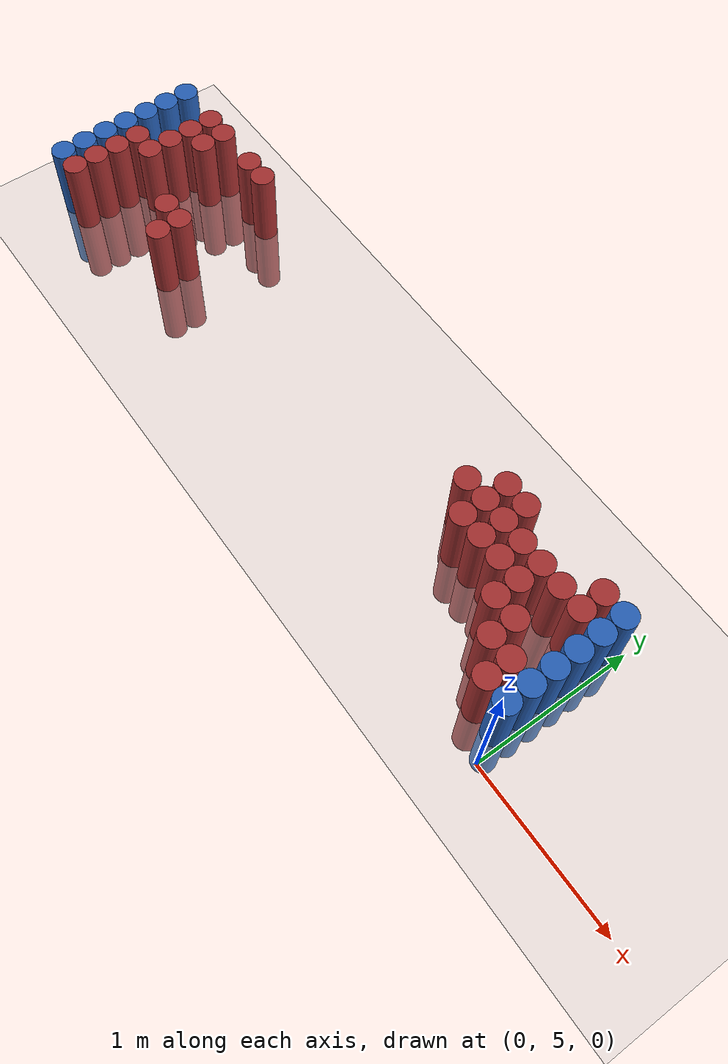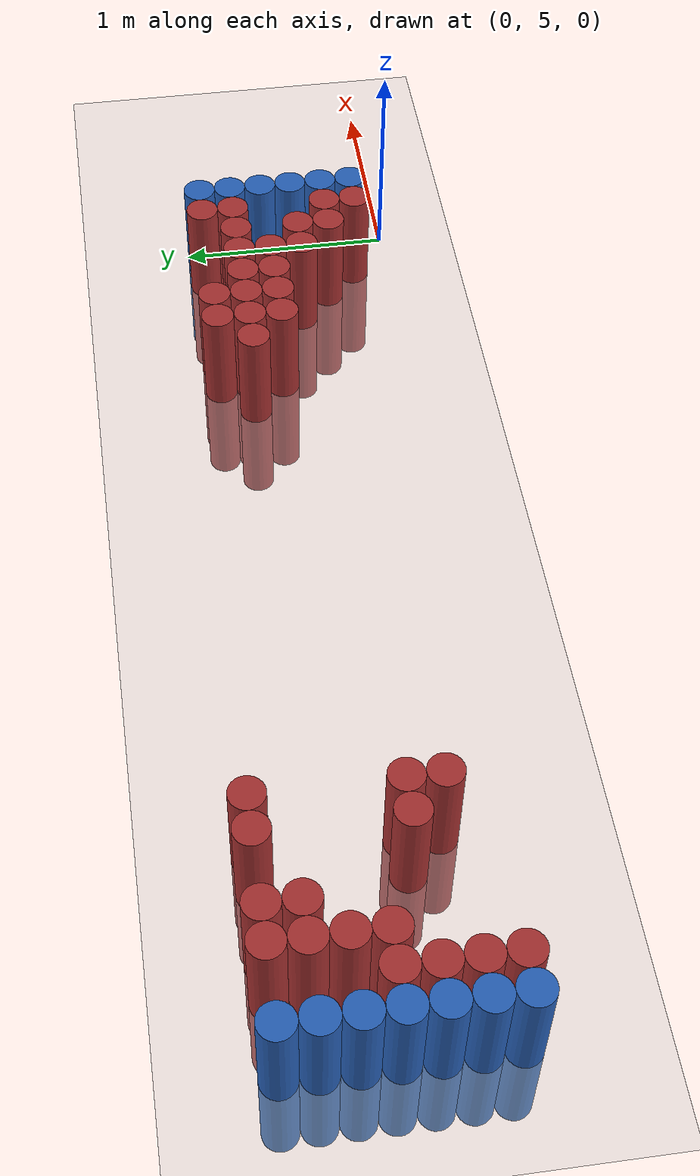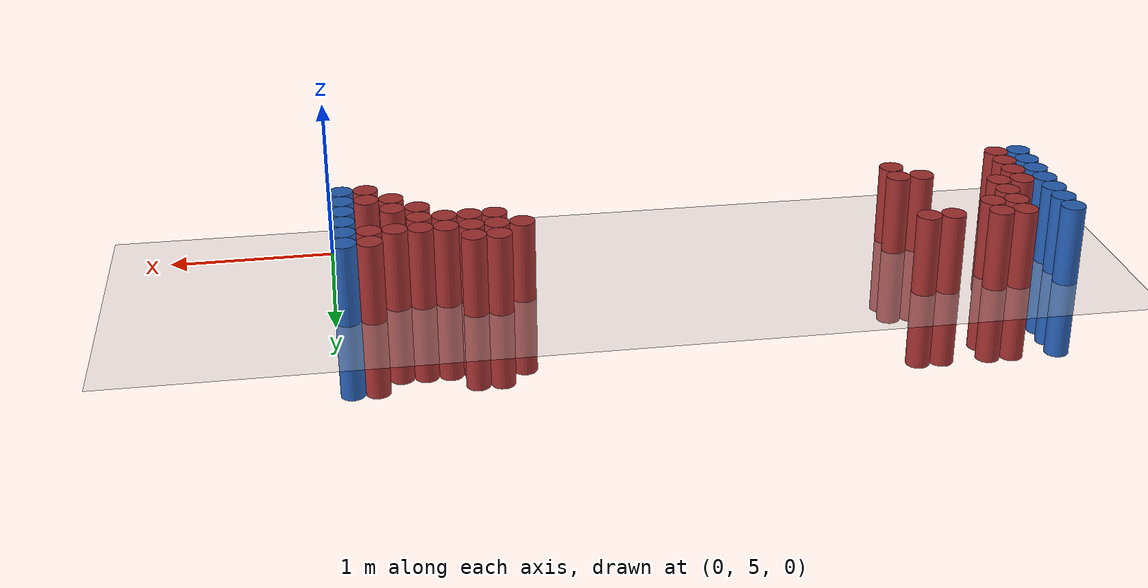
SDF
<sdf version="1.6">
 <world name="default">
  <model name="ground_plane">
   <static>1</static>
   <link name="link">
    <collision name="collision">
     <geometry><plane><normal>0 0 1</normal><size>100 100</size></plane></geometry>
     <surface><friction><ode><mu>100</mu><mu2>50</mu2></ode></friction></surface>
    </collision>
    <visual name="visual">
     <cast_shadows>0</cast_shadows>
     <geometry><plane><normal>0 0 1</normal><size>100 100</size></plane></geometry>
     <material>
      <script><uri>file://media/materials/scripts/gazebo.material</uri><name>Gazebo/Grey</name></script>
     </material>
    </visual>
   </link>
  </model>
  <model name="unit_cylinder_96">
   <static>1</static>
   <pose>-4.425000 5.175000 0.000000 0.000000 0.000000 0.000000</pose>
   <link name="link">
    <inertial>
     <mass>1</mass>
     <inertia><ixx>0.145833</ixx><ixy>0</ixy><ixz>0</ixz><iyy>0.145833</iyy><iyz>0</iyz><izz>0.125</izz></inertia>
    </inertial>
    <collision name="collision">
     <geometry><cylinder><radius>0.075000</radius><length>1</length></cylinder></geometry>
    </collision>
    <visual name="visual">
     <geometry><cylinder><radius>0.075000</radius><length>1</length></cylinder></geometry>
     <material>
      <ambient>0.152000 0.379000 0.720000 1</ambient>
      <diffuse>0.152000 0.379000 0.720000 1</diffuse>
     </material>
     <material>
      <script><name>Gazebo/Grey</name><uri>file://media/materials/scripts/gazebo.material</uri></script>
     </material>
    </visual>
   </link>
  </model>
  <model name="unit_cylinder_97">
   <static>1</static>
   <pose>-4.425000 5.325000 0.000000 0.000000 0.000000 0.000000</pose>
   <link name="link">
    <inertial>
     <mass>1</mass>
     <inertia><ixx>0.145833</ixx><ixy>0</ixy><ixz>0</ixz><iyy>0.145833</iyy><iyz>0</iyz><izz>0.125</izz></inertia>
    </inertial>
    <collision name="collision">
     <geometry><cylinder><radius>0.075000</radius><length>1</length></cylinder></geometry>
    </collision>
    <visual name="visual">
     <geometry><cylinder><radius>0.075000</radius><length>1</length></cylinder></geometry>
     <material>
      <ambient>0.152000 0.379000 0.720000 1</ambient>
      <diffuse>0.152000 0.379000 0.720000 1</diffuse>
     </material>
     <material>
      <script><name>Gazebo/Grey</name><uri>file://media/materials/scripts/gazebo.material</uri></script>
     </material>
    </visual>
   </link>
  </model>
  <model name="unit_cylinder_98">
   <static>1</static>
   <pose>-4.425000 5.475000 0.000000 0.000000 0.000000 0.000000</pose>
   <link name="link">
    <inertial>
     <mass>1</mass>
     <inertia><ixx>0.145833</ixx><ixy>0</ixy><ixz>0</ixz><iyy>0.145833</iyy><iyz>0</iyz><izz>0.125</izz></inertia>
    </inertial>
    <collision name="collision">
     <geometry><cylinder><radius>0.075000</radius><length>1</length></cylinder></geometry>
    </collision>
    <visual name="visual">
     <geometry><cylinder><radius>0.075000</radius><length>1</length></cylinder></geometry>
     <material>
      <ambient>0.152000 0.379000 0.720000 1</ambient>
      <diffuse>0.152000 0.379000 0.720000 1</diffuse>
     </material>
     <material>
      <script><name>Gazebo/Grey</name><uri>file://media/materials/scripts/gazebo.material</uri></script>
     </material>
    </visual>
   </link>
  </model>
  <model name="unit_cylinder_99">
   <static>1</static>
   <pose>-4.425000 5.625000 0.000000 0.000000 0.000000 0.000000</pose>
   <link name="link">
    <inertial>
     <mass>1</mass>
     <inertia><ixx>0.145833</ixx><ixy>0</ixy><ixz>0</ixz><iyy>0.145833</iyy><iyz>0</iyz><izz>0.125</izz></inertia>
    </inertial>
    <collision name="collision">
     <geometry><cylinder><radius>0.075000</radius><length>1</length></cylinder></geometry>
    </collision>
    <visual name="visual">
     <geometry><cylinder><radius>0.075000</radius><length>1</length></cylinder></geometry>
     <material>
      <ambient>0.152000 0.379000 0.720000 1</ambient>
      <diffuse>0.152000 0.379000 0.720000 1</diffuse>
     </material>
     <material>
      <script><name>Gazebo/Grey</name><uri>file://media/materials/scripts/gazebo.material</uri></script>
     </material>
    </visual>
   </link>
  </model>
  <model name="unit_cylinder_100">
   <static>1</static>
   <pose>-4.425000 5.775000 0.000000 0.000000 0.000000 0.000000</pose>
   <link name="link">
    <inertial>
     <mass>1</mass>
     <inertia><ixx>0.145833</ixx><ixy>0</ixy><ixz>0</ixz><iyy>0.145833</iyy><iyz>0</iyz><izz>0.125</izz></inertia>
    </inertial>
    <collision name="collision">
     <geometry><cylinder><radius>0.075000</radius><length>1</length></cylinder></geometry>
    </collision>
    <visual name="visual">
     <geometry><cylinder><radius>0.075000</radius><length>1</length></cylinder></geometry>
     <material>
      <ambient>0.152000 0.379000 0.720000 1</ambient>
      <diffuse>0.152000 0.379000 0.720000 1</diffuse>
     </material>
     <material>
      <script><name>Gazebo/Grey</name><uri>file://media/materials/scripts/gazebo.material</uri></script>
     </material>
    </visual>
   </link>
  </model>
  <model name="unit_cylinder_101">
   <static>1</static>
   <pose>-4.425000 5.925000 0.000000 0.000000 0.000000 0.000000</pose>
   <link name="link">
    <inertial>
     <mass>1</mass>
     <inertia><ixx>0.145833</ixx><ixy>0</ixy><ixz>0</ixz><iyy>0.145833</iyy><iyz>0</iyz><izz>0.125</izz></inertia>
    </inertial>
    <collision name="collision">
     <geometry><cylinder><radius>0.075000</radius><length>1</length></cylinder></geometry>
    </collision>
    <visual name="visual">
     <geometry><cylinder><radius>0.075000</radius><length>1</length></cylinder></geometry>
     <material>
      <ambient>0.152000 0.379000 0.720000 1</ambient>
      <diffuse>0.152000 0.379000 0.720000 1</diffuse>
     </material>
     <material>
      <script><name>Gazebo/Grey</name><uri>file://media/materials/scripts/gazebo.material</uri></script>
     </material>
    </visual>
   </link>
  </model>
  <model name="unit_cylinder_102">
   <static>1</static>
   <pose>-4.425000 6.075000 0.000000 0.000000 0.000000 0.000000</pose>
   <link name="link">
    <inertial>
     <mass>1</mass>
     <inertia><ixx>0.145833</ixx><ixy>0</ixy><ixz>0</ixz><iyy>0.145833</iyy><iyz>0</iyz><izz>0.125</izz></inertia>
    </inertial>
    <collision name="collision">
     <geometry><cylinder><radius>0.075000</radius><length>1</length></cylinder></geometry>
    </collision>
    <visual name="visual">
     <geometry><cylinder><radius>0.075000</radius><length>1</length></cylinder></geometry>
     <material>
      <ambient>0.152000 0.379000 0.720000 1</ambient>
      <diffuse>0.152000 0.379000 0.720000 1</diffuse>
     </material>
     <material>
      <script><name>Gazebo/Grey</name><uri>file://media/materials/scripts/gazebo.material</uri></script>
     </material>
    </visual>
   </link>
  </model>
  <model name="unit_cylinder_126">
   <static>1</static>
   <pose>-4.275000 5.175000 0.000000 0.000000 0.000000 0.000000</pose>
   <link name="link">
    <inertial>
     <mass>1</mass>
     <inertia><ixx>0.145833</ixx><ixy>0</ixy><ixz>0</ixz><iyy>0.145833</iyy><iyz>0</iyz><izz>0.125</izz></inertia>
    </inertial>
    <collision name="collision">
     <geometry><cylinder><radius>0.075000</radius><length>1</length></cylinder></geometry>
    </collision>
    <visual name="visual">
     <geometry><cylinder><radius>0.075000</radius><length>1</length></cylinder></geometry>
     <material>
      <ambient>0.648000 0.192000 0.192000 1</ambient>
      <diffuse>0.648000 0.192000 0.192000 1</diffuse>
     </material>
     <material>
      <script><name>Gazebo/Grey</name><uri>file://media/materials/scripts/gazebo.material</uri></script>
     </material>
    </visual>
   </link>
  </model>
  <model name="unit_cylinder_127">
   <static>1</static>
   <pose>-4.275000 5.325000 0.000000 0.000000 0.000000 0.000000</pose>
   <link name="link">
    <inertial>
     <mass>1</mass>
     <inertia><ixx>0.145833</ixx><ixy>0</ixy><ixz>0</ixz><iyy>0.145833</iyy><iyz>0</iyz><izz>0.125</izz></inertia>
    </inertial>
    <collision name="collision">
     <geometry><cylinder><radius>0.075000</radius><length>1</length></cylinder></geometry>
    </collision>
    <visual name="visual">
     <geometry><cylinder><radius>0.075000</radius><length>1</length></cylinder></geometry>
     <material>
      <ambient>0.648000 0.192000 0.192000 1</ambient>
      <diffuse>0.648000 0.192000 0.192000 1</diffuse>
     </material>
     <material>
      <script><name>Gazebo/Grey</name><uri>file://media/materials/scripts/gazebo.material</uri></script>
     </material>
    </visual>
   </link>
  </model>
  <model name="unit_cylinder_128">
   <static>1</static>
   <pose>-4.275000 5.475000 0.000000 0.000000 0.000000 0.000000</pose>
   <link name="link">
    <inertial>
     <mass>1</mass>
     <inertia><ixx>0.145833</ixx><ixy>0</ixy><ixz>0</ixz><iyy>0.145833</iyy><iyz>0</iyz><izz>0.125</izz></inertia>
    </inertial>
    <collision name="collision">
     <geometry><cylinder><radius>0.075000</radius><length>1</length></cylinder></geometry>
    </collision>
    <visual name="visual">
     <geometry><cylinder><radius>0.075000</radius><length>1</length></cylinder></geometry>
     <material>
      <ambient>0.648000 0.192000 0.192000 1</ambient>
      <diffuse>0.648000 0.192000 0.192000 1</diffuse>
     </material>
     <material>
      <script><name>Gazebo/Grey</name><uri>file://media/materials/scripts/gazebo.material</uri></script>
     </material>
    </visual>
   </link>
  </model>
  <model name="unit_cylinder_129">
   <static>1</static>
   <pose>-4.275000 5.625000 0.000000 0.000000 0.000000 0.000000</pose>
   <link name="link">
    <inertial>
     <mass>1</mass>
     <inertia><ixx>0.145833</ixx><ixy>0</ixy><ixz>0</ixz><iyy>0.145833</iyy><iyz>0</iyz><izz>0.125</izz></inertia>
    </inertial>
    <collision name="collision">
     <geometry><cylinder><radius>0.075000</radius><length>1</length></cylinder></geometry>
    </collision>
    <visual name="visual">
     <geometry><cylinder><radius>0.075000</radius><length>1</length></cylinder></geometry>
     <material>
      <ambient>0.648000 0.192000 0.192000 1</ambient>
      <diffuse>0.648000 0.192000 0.192000 1</diffuse>
     </material>
     <material>
      <script><name>Gazebo/Grey</name><uri>file://media/materials/scripts/gazebo.material</uri></script>
     </material>
    </visual>
   </link>
  </model>
  <model name="unit_cylinder_139">
   <static>1</static>
   <pose>-4.125000 5.625000 0.000000 0.000000 0.000000 0.000000</pose>
   <link name="link">
    <inertial>
     <mass>1</mass>
     <inertia><ixx>0.145833</ixx><ixy>0</ixy><ixz>0</ixz><iyy>0.145833</iyy><iyz>0</iyz><izz>0.125</izz></inertia>
    </inertial>
    <collision name="collision">
     <geometry><cylinder><radius>0.075000</radius><length>1</length></cylinder></geometry>
    </collision>
    <visual name="visual">
     <geometry><cylinder><radius>0.075000</radius><length>1</length></cylinder></geometry>
     <material>
      <ambient>0.648000 0.192000 0.192000 1</ambient>
      <diffuse>0.648000 0.192000 0.192000 1</diffuse>
     </material>
     <material>
      <script><name>Gazebo/Grey</name><uri>file://media/materials/scripts/gazebo.material</uri></script>
     </material>
    </visual>
   </link>
  </model>
  <model name="unit_cylinder_140">
   <static>1</static>
   <pose>-4.125000 5.775000 0.000000 0.000000 0.000000 0.000000</pose>
   <link name="link">
    <inertial>
     <mass>1</mass>
     <inertia><ixx>0.145833</ixx><ixy>0</ixy><ixz>0</ixz><iyy>0.145833</iyy><iyz>0</iyz><izz>0.125</izz></inertia>
    </inertial>
    <collision name="collision">
     <geometry><cylinder><radius>0.075000</radius><length>1</length></cylinder></geometry>
    </collision>
    <visual name="visual">
     <geometry><cylinder><radius>0.075000</radius><length>1</length></cylinder></geometry>
     <material>
      <ambient>0.648000 0.192000 0.192000 1</ambient>
      <diffuse>0.648000 0.192000 0.192000 1</diffuse>
     </material>
     <material>
      <script><name>Gazebo/Grey</name><uri>file://media/materials/scripts/gazebo.material</uri></script>
     </material>
    </visual>
   </link>
  </model>
  <model name="unit_cylinder_141">
   <static>1</static>
   <pose>-4.125000 5.925000 0.000000 0.000000 0.000000 0.000000</pose>
   <link name="link">
    <inertial>
     <mass>1</mass>
     <inertia><ixx>0.145833</ixx><ixy>0</ixy><ixz>0</ixz><iyy>0.145833</iyy><iyz>0</iyz><izz>0.125</izz></inertia>
    </inertial>
    <collision name="collision">
     <geometry><cylinder><radius>0.075000</radius><length>1</length></cylinder></geometry>
    </collision>
    <visual name="visual">
     <geometry><cylinder><radius>0.075000</radius><length>1</length></cylinder></geometry>
     <material>
      <ambient>0.648000 0.192000 0.192000 1</ambient>
      <diffuse>0.648000 0.192000 0.192000 1</diffuse>
     </material>
     <material>
      <script><name>Gazebo/Grey</name><uri>file://media/materials/scripts/gazebo.material</uri></script>
     </material>
    </visual>
   </link>
  </model>
  <model name="unit_cylinder_142">
   <static>1</static>
   <pose>-4.125000 6.075000 0.000000 0.000000 0.000000 0.000000</pose>
   <link name="link">
    <inertial>
     <mass>1</mass>
     <inertia><ixx>0.145833</ixx><ixy>0</ixy><ixz>0</ixz><iyy>0.145833</iyy><iyz>0</iyz><izz>0.125</izz></inertia>
    </inertial>
    <collision name="collision">
     <geometry><cylinder><radius>0.075000</radius><length>1</length></cylinder></geometry>
    </collision>
    <visual name="visual">
     <geometry><cylinder><radius>0.075000</radius><length>1</length></cylinder></geometry>
     <material>
      <ambient>0.648000 0.192000 0.192000 1</ambient>
      <diffuse>0.648000 0.192000 0.192000 1</diffuse>
     </material>
     <material>
      <script><name>Gazebo/Grey</name><uri>file://media/materials/scripts/gazebo.material</uri></script>
     </material>
    </visual>
   </link>
  </model>
  <model name="unit_cylinder_150">
   <static>1</static>
   <pose>-3.975000 5.925000 0.000000 0.000000 0.000000 0.000000</pose>
   <link name="link">
    <inertial>
     <mass>1</mass>
     <inertia><ixx>0.145833</ixx><ixy>0</ixy><ixz>0</ixz><iyy>0.145833</iyy><iyz>0</iyz><izz>0.125</izz></inertia>
    </inertial>
    <collision name="collision">
     <geometry><cylinder><radius>0.075000</radius><length>1</length></cylinder></geometry>
    </collision>
    <visual name="visual">
     <geometry><cylinder><radius>0.075000</radius><length>1</length></cylinder></geometry>
     <material>
      <ambient>0.648000 0.192000 0.192000 1</ambient>
      <diffuse>0.648000 0.192000 0.192000 1</diffuse>
     </material>
     <material>
      <script><name>Gazebo/Grey</name><uri>file://media/materials/scripts/gazebo.material</uri></script>
     </material>
    </visual>
   </link>
  </model>
  <model name="unit_cylinder_151">
   <static>1</static>
   <pose>-3.975000 6.075000 0.000000 0.000000 0.000000 0.000000</pose>
   <link name="link">
    <inertial>
     <mass>1</mass>
     <inertia><ixx>0.145833</ixx><ixy>0</ixy><ixz>0</ixz><iyy>0.145833</iyy><iyz>0</iyz><izz>0.125</izz></inertia>
    </inertial>
    <collision name="collision">
     <geometry><cylinder><radius>0.075000</radius><length>1</length></cylinder></geometry>
    </collision>
    <visual name="visual">
     <geometry><cylinder><radius>0.075000</radius><length>1</length></cylinder></geometry>
     <material>
      <ambient>0.648000 0.192000 0.192000 1</ambient>
      <diffuse>0.648000 0.192000 0.192000 1</diffuse>
     </material>
     <material>
      <script><name>Gazebo/Grey</name><uri>file://media/materials/scripts/gazebo.material</uri></script>
     </material>
    </visual>
   </link>
  </model>
  <model name="unit_cylinder_163">
   <static>1</static>
   <pose>-3.675000 5.475000 0.000000 0.000000 0.000000 0.000000</pose>
   <link name="link">
    <inertial>
     <mass>1</mass>
     <inertia><ixx>0.145833</ixx><ixy>0</ixy><ixz>0</ixz><iyy>0.145833</iyy><iyz>0</iyz><izz>0.125</izz></inertia>
    </inertial>
    <collision name="collision">
     <geometry><cylinder><radius>0.075000</radius><length>1</length></cylinder></geometry>
    </collision>
    <visual name="visual">
     <geometry><cylinder><radius>0.075000</radius><length>1</length></cylinder></geometry>
     <material>
      <ambient>0.648000 0.192000 0.192000 1</ambient>
      <diffuse>0.648000 0.192000 0.192000 1</diffuse>
     </material>
     <material>
      <script><name>Gazebo/Grey</name><uri>file://media/materials/scripts/gazebo.material</uri></script>
     </material>
    </visual>
   </link>
  </model>
  <model name="unit_cylinder_164">
   <static>1</static>
   <pose>-3.675000 6.075000 0.000000 0.000000 0.000000 0.000000</pose>
   <link name="link">
    <inertial>
     <mass>1</mass>
     <inertia><ixx>0.145833</ixx><ixy>0</ixy><ixz>0</ixz><iyy>0.145833</iyy><iyz>0</iyz><izz>0.125</izz></inertia>
    </inertial>
    <collision name="collision">
     <geometry><cylinder><radius>0.075000</radius><length>1</length></cylinder></geometry>
    </collision>
    <visual name="visual">
     <geometry><cylinder><radius>0.075000</radius><length>1</length></cylinder></geometry>
     <material>
      <ambient>0.648000 0.192000 0.192000 1</ambient>
      <diffuse>0.648000 0.192000 0.192000 1</diffuse>
     </material>
     <material>
      <script><name>Gazebo/Grey</name><uri>file://media/materials/scripts/gazebo.material</uri></script>
     </material>
    </visual>
   </link>
  </model>
  <model name="unit_cylinder_176">
   <static>1</static>
   <pose>-3.525000 5.325000 0.000000 0.000000 0.000000 0.000000</pose>
   <link name="link">
    <inertial>
     <mass>1</mass>
     <inertia><ixx>0.145833</ixx><ixy>0</ixy><ixz>0</ixz><iyy>0.145833</iyy><iyz>0</iyz><izz>0.125</izz></inertia>
    </inertial>
    <collision name="collision">
     <geometry><cylinder><radius>0.075000</radius><length>1</length></cylinder></geometry>
    </collision>
    <visual name="visual">
     <geometry><cylinder><radius>0.075000</radius><length>1</length></cylinder></geometry>
     <material>
      <ambient>0.648000 0.192000 0.192000 1</ambient>
      <diffuse>0.648000 0.192000 0.192000 1</diffuse>
     </material>
     <material>
      <script><name>Gazebo/Grey</name><uri>file://media/materials/scripts/gazebo.material</uri></script>
     </material>
    </visual>
   </link>
  </model>
  <model name="unit_cylinder_177">
   <static>1</static>
   <pose>-3.525000 5.475000 0.000000 0.000000 0.000000 0.000000</pose>
   <link name="link">
    <inertial>
     <mass>1</mass>
     <inertia><ixx>0.145833</ixx><ixy>0</ixy><ixz>0</ixz><iyy>0.145833</iyy><iyz>0</iyz><izz>0.125</izz></inertia>
    </inertial>
    <collision name="collision">
     <geometry><cylinder><radius>0.075000</radius><length>1</length></cylinder></geometry>
    </collision>
    <visual name="visual">
     <geometry><cylinder><radius>0.075000</radius><length>1</length></cylinder></geometry>
     <material>
      <ambient>0.648000 0.192000 0.192000 1</ambient>
      <diffuse>0.648000 0.192000 0.192000 1</diffuse>
     </material>
     <material>
      <script><name>Gazebo/Grey</name><uri>file://media/materials/scripts/gazebo.material</uri></script>
     </material>
    </visual>
   </link>
  </model>
  <model name="unit_cylinder_178">
   <static>1</static>
   <pose>-3.525000 6.075000 0.000000 0.000000 0.000000 0.000000</pose>
   <link name="link">
    <inertial>
     <mass>1</mass>
     <inertia><ixx>0.145833</ixx><ixy>0</ixy><ixz>0</ixz><iyy>0.145833</iyy><iyz>0</iyz><izz>0.125</izz></inertia>
    </inertial>
    <collision name="collision">
     <geometry><cylinder><radius>0.075000</radius><length>1</length></cylinder></geometry>
    </collision>
    <visual name="visual">
     <geometry><cylinder><radius>0.075000</radius><length>1</length></cylinder></geometry>
     <material>
      <ambient>0.648000 0.192000 0.192000 1</ambient>
      <diffuse>0.648000 0.192000 0.192000 1</diffuse>
     </material>
     <material>
      <script><name>Gazebo/Grey</name><uri>file://media/materials/scripts/gazebo.material</uri></script>
     </material>
    </visual>
   </link>
  </model>
  <model name="unit_cylinder_253">
   <static>1</static>
   <pose>-1.125000 5.775000 0.000000 0.000000 0.000000 0.000000</pose>
   <link name="link">
    <inertial>
     <mass>1</mass>
     <inertia><ixx>0.145833</ixx><ixy>0</ixy><ixz>0</ixz><iyy>0.145833</iyy><iyz>0</iyz><izz>0.125</izz></inertia>
    </inertial>
    <collision name="collision">
     <geometry><cylinder><radius>0.075000</radius><length>1</length></cylinder></geometry>
    </collision>
    <visual name="visual">
     <geometry><cylinder><radius>0.075000</radius><length>1</length></cylinder></geometry>
     <material>
      <ambient>0.648000 0.192000 0.192000 1</ambient>
      <diffuse>0.648000 0.192000 0.192000 1</diffuse>
     </material>
     <material>
      <script><name>Gazebo/Grey</name><uri>file://media/materials/scripts/gazebo.material</uri></script>
     </material>
    </visual>
   </link>
  </model>
  <model name="unit_cylinder_259">
   <static>1</static>
   <pose>-0.975000 5.625000 0.000000 0.000000 0.000000 0.000000</pose>
   <link name="link">
    <inertial>
     <mass>1</mass>
     <inertia><ixx>0.145833</ixx><ixy>0</ixy><ixz>0</ixz><iyy>0.145833</iyy><iyz>0</iyz><izz>0.125</izz></inertia>
    </inertial>
    <collision name="collision">
     <geometry><cylinder><radius>0.075000</radius><length>1</length></cylinder></geometry>
    </collision>
    <visual name="visual">
     <geometry><cylinder><radius>0.075000</radius><length>1</length></cylinder></geometry>
     <material>
      <ambient>0.648000 0.192000 0.192000 1</ambient>
      <diffuse>0.648000 0.192000 0.192000 1</diffuse>
     </material>
     <material>
      <script><name>Gazebo/Grey</name><uri>file://media/materials/scripts/gazebo.material</uri></script>
     </material>
    </visual>
   </link>
  </model>
  <model name="unit_cylinder_260">
   <static>1</static>
   <pose>-0.975000 5.775000 0.000000 0.000000 0.000000 0.000000</pose>
   <link name="link">
    <inertial>
     <mass>1</mass>
     <inertia><ixx>0.145833</ixx><ixy>0</ixy><ixz>0</ixz><iyy>0.145833</iyy><iyz>0</iyz><izz>0.125</izz></inertia>
    </inertial>
    <collision name="collision">
     <geometry><cylinder><radius>0.075000</radius><length>1</length></cylinder></geometry>
    </collision>
    <visual name="visual">
     <geometry><cylinder><radius>0.075000</radius><length>1</length></cylinder></geometry>
     <material>
      <ambient>0.648000 0.192000 0.192000 1</ambient>
      <diffuse>0.648000 0.192000 0.192000 1</diffuse>
     </material>
     <material>
      <script><name>Gazebo/Grey</name><uri>file://media/materials/scripts/gazebo.material</uri></script>
     </material>
    </visual>
   </link>
  </model>
  <model name="unit_cylinder_261">
   <static>1</static>
   <pose>-0.975000 5.925000 0.000000 0.000000 0.000000 0.000000</pose>
   <link name="link">
    <inertial>
     <mass>1</mass>
     <inertia><ixx>0.145833</ixx><ixy>0</ixy><ixz>0</ixz><iyy>0.145833</iyy><iyz>0</iyz><izz>0.125</izz></inertia>
    </inertial>
    <collision name="collision">
     <geometry><cylinder><radius>0.075000</radius><length>1</length></cylinder></geometry>
    </collision>
    <visual name="visual">
     <geometry><cylinder><radius>0.075000</radius><length>1</length></cylinder></geometry>
     <material>
      <ambient>0.648000 0.192000 0.192000 1</ambient>
      <diffuse>0.648000 0.192000 0.192000 1</diffuse>
     </material>
     <material>
      <script><name>Gazebo/Grey</name><uri>file://media/materials/scripts/gazebo.material</uri></script>
     </material>
    </visual>
   </link>
  </model>
  <model name="unit_cylinder_269">
   <static>1</static>
   <pose>-0.825000 5.625000 0.000000 0.000000 0.000000 0.000000</pose>
   <link name="link">
    <inertial>
     <mass>1</mass>
     <inertia><ixx>0.145833</ixx><ixy>0</ixy><ixz>0</ixz><iyy>0.145833</iyy><iyz>0</iyz><izz>0.125</izz></inertia>
    </inertial>
    <collision name="collision">
     <geometry><cylinder><radius>0.075000</radius><length>1</length></cylinder></geometry>
    </collision>
    <visual name="visual">
     <geometry><cylinder><radius>0.075000</radius><length>1</length></cylinder></geometry>
     <material>
      <ambient>0.648000 0.192000 0.192000 1</ambient>
      <diffuse>0.648000 0.192000 0.192000 1</diffuse>
     </material>
     <material>
      <script><name>Gazebo/Grey</name><uri>file://media/materials/scripts/gazebo.material</uri></script>
     </material>
    </visual>
   </link>
  </model>
  <model name="unit_cylinder_270">
   <static>1</static>
   <pose>-0.825000 5.775000 0.000000 0.000000 0.000000 0.000000</pose>
   <link name="link">
    <inertial>
     <mass>1</mass>
     <inertia><ixx>0.145833</ixx><ixy>0</ixy><ixz>0</ixz><iyy>0.145833</iyy><iyz>0</iyz><izz>0.125</izz></inertia>
    </inertial>
    <collision name="collision">
     <geometry><cylinder><radius>0.075000</radius><length>1</length></cylinder></geometry>
    </collision>
    <visual name="visual">
     <geometry><cylinder><radius>0.075000</radius><length>1</length></cylinder></geometry>
     <material>
      <ambient>0.648000 0.192000 0.192000 1</ambient>
      <diffuse>0.648000 0.192000 0.192000 1</diffuse>
     </material>
     <material>
      <script><name>Gazebo/Grey</name><uri>file://media/materials/scripts/gazebo.material</uri></script>
     </material>
    </visual>
   </link>
  </model>
  <model name="unit_cylinder_271">
   <static>1</static>
   <pose>-0.825000 5.925000 0.000000 0.000000 0.000000 0.000000</pose>
   <link name="link">
    <inertial>
     <mass>1</mass>
     <inertia><ixx>0.145833</ixx><ixy>0</ixy><ixz>0</ixz><iyy>0.145833</iyy><iyz>0</iyz><izz>0.125</izz></inertia>
    </inertial>
    <collision name="collision">
     <geometry><cylinder><radius>0.075000</radius><length>1</length></cylinder></geometry>
    </collision>
    <visual name="visual">
     <geometry><cylinder><radius>0.075000</radius><length>1</length></cylinder></geometry>
     <material>
      <ambient>0.648000 0.192000 0.192000 1</ambient>
      <diffuse>0.648000 0.192000 0.192000 1</diffuse>
     </material>
     <material>
      <script><name>Gazebo/Grey</name><uri>file://media/materials/scripts/gazebo.material</uri></script>
     </material>
    </visual>
   </link>
  </model>
  <model name="unit_cylinder_274">
   <static>1</static>
   <pose>-0.675000 5.625000 0.000000 0.000000 0.000000 0.000000</pose>
   <link name="link">
    <inertial>
     <mass>1</mass>
     <inertia><ixx>0.145833</ixx><ixy>0</ixy><ixz>0</ixz><iyy>0.145833</iyy><iyz>0</iyz><izz>0.125</izz></inertia>
    </inertial>
    <collision name="collision">
     <geometry><cylinder><radius>0.075000</radius><length>1</length></cylinder></geometry>
    </collision>
    <visual name="visual">
     <geometry><cylinder><radius>0.075000</radius><length>1</length></cylinder></geometry>
     <material>
      <ambient>0.648000 0.192000 0.192000 1</ambient>
      <diffuse>0.648000 0.192000 0.192000 1</diffuse>
     </material>
     <material>
      <script><name>Gazebo/Grey</name><uri>file://media/materials/scripts/gazebo.material</uri></script>
     </material>
    </visual>
   </link>
  </model>
  <model name="unit_cylinder_275">
   <static>1</static>
   <pose>-0.675000 5.775000 0.000000 0.000000 0.000000 0.000000</pose>
   <link name="link">
    <inertial>
     <mass>1</mass>
     <inertia><ixx>0.145833</ixx><ixy>0</ixy><ixz>0</ixz><iyy>0.145833</iyy><iyz>0</iyz><izz>0.125</izz></inertia>
    </inertial>
    <collision name="collision">
     <geometry><cylinder><radius>0.075000</radius><length>1</length></cylinder></geometry>
    </collision>
    <visual name="visual">
     <geometry><cylinder><radius>0.075000</radius><length>1</length></cylinder></geometry>
     <material>
      <ambient>0.648000 0.192000 0.192000 1</ambient>
      <diffuse>0.648000 0.192000 0.192000 1</diffuse>
     </material>
     <material>
      <script><name>Gazebo/Grey</name><uri>file://media/materials/scripts/gazebo.material</uri></script>
     </material>
    </visual>
   </link>
  </model>
  <model name="unit_cylinder_280">
   <static>1</static>
   <pose>-0.525000 5.475000 0.000000 0.000000 0.000000 0.000000</pose>
   <link name="link">
    <inertial>
     <mass>1</mass>
     <inertia><ixx>0.145833</ixx><ixy>0</ixy><ixz>0</ixz><iyy>0.145833</iyy><iyz>0</iyz><izz>0.125</izz></inertia>
    </inertial>
    <collision name="collision">
     <geometry><cylinder><radius>0.075000</radius><length>1</length></cylinder></geometry>
    </collision>
    <visual name="visual">
     <geometry><cylinder><radius>0.075000</radius><length>1</length></cylinder></geometry>
     <material>
      <ambient>0.648000 0.192000 0.192000 1</ambient>
      <diffuse>0.648000 0.192000 0.192000 1</diffuse>
     </material>
     <material>
      <script><name>Gazebo/Grey</name><uri>file://media/materials/scripts/gazebo.material</uri></script>
     </material>
    </visual>
   </link>
  </model>
  <model name="unit_cylinder_281">
   <static>1</static>
   <pose>-0.525000 5.625000 0.000000 0.000000 0.000000 0.000000</pose>
   <link name="link">
    <inertial>
     <mass>1</mass>
     <inertia><ixx>0.145833</ixx><ixy>0</ixy><ixz>0</ixz><iyy>0.145833</iyy><iyz>0</iyz><izz>0.125</izz></inertia>
    </inertial>
    <collision name="collision">
     <geometry><cylinder><radius>0.075000</radius><length>1</length></cylinder></geometry>
    </collision>
    <visual name="visual">
     <geometry><cylinder><radius>0.075000</radius><length>1</length></cylinder></geometry>
     <material>
      <ambient>0.648000 0.192000 0.192000 1</ambient>
      <diffuse>0.648000 0.192000 0.192000 1</diffuse>
     </material>
     <material>
      <script><name>Gazebo/Grey</name><uri>file://media/materials/scripts/gazebo.material</uri></script>
     </material>
    </visual>
   </link>
  </model>
  <model name="unit_cylinder_282">
   <static>1</static>
   <pose>-0.525000 5.775000 0.000000 0.000000 0.000000 0.000000</pose>
   <link name="link">
    <inertial>
     <mass>1</mass>
     <inertia><ixx>0.145833</ixx><ixy>0</ixy><ixz>0</ixz><iyy>0.145833</iyy><iyz>0</iyz><izz>0.125</izz></inertia>
    </inertial>
    <collision name="collision">
     <geometry><cylinder><radius>0.075000</radius><length>1</length></cylinder></geometry>
    </collision>
    <visual name="visual">
     <geometry><cylinder><radius>0.075000</radius><length>1</length></cylinder></geometry>
     <material>
      <ambient>0.648000 0.192000 0.192000 1</ambient>
      <diffuse>0.648000 0.192000 0.192000 1</diffuse>
     </material>
     <material>
      <script><name>Gazebo/Grey</name><uri>file://media/materials/scripts/gazebo.material</uri></script>
     </material>
    </visual>
   </link>
  </model>
  <model name="unit_cylinder_285">
   <static>1</static>
   <pose>-0.375000 5.325000 0.000000 0.000000 0.000000 0.000000</pose>
   <link name="link">
    <inertial>
     <mass>1</mass>
     <inertia><ixx>0.145833</ixx><ixy>0</ixy><ixz>0</ixz><iyy>0.145833</iyy><iyz>0</iyz><izz>0.125</izz></inertia>
    </inertial>
    <collision name="collision">
     <geometry><cylinder><radius>0.075000</radius><length>1</length></cylinder></geometry>
    </collision>
    <visual name="visual">
     <geometry><cylinder><radius>0.075000</radius><length>1</length></cylinder></geometry>
     <material>
      <ambient>0.648000 0.192000 0.192000 1</ambient>
      <diffuse>0.648000 0.192000 0.192000 1</diffuse>
     </material>
     <material>
      <script><name>Gazebo/Grey</name><uri>file://media/materials/scripts/gazebo.material</uri></script>
     </material>
    </visual>
   </link>
  </model>
  <model name="unit_cylinder_286">
   <static>1</static>
   <pose>-0.375000 5.475000 0.000000 0.000000 0.000000 0.000000</pose>
   <link name="link">
    <inertial>
     <mass>1</mass>
     <inertia><ixx>0.145833</ixx><ixy>0</ixy><ixz>0</ixz><iyy>0.145833</iyy><iyz>0</iyz><izz>0.125</izz></inertia>
    </inertial>
    <collision name="collision">
     <geometry><cylinder><radius>0.075000</radius><length>1</length></cylinder></geometry>
    </collision>
    <visual name="visual">
     <geometry><cylinder><radius>0.075000</radius><length>1</length></cylinder></geometry>
     <material>
      <ambient>0.648000 0.192000 0.192000 1</ambient>
      <diffuse>0.648000 0.192000 0.192000 1</diffuse>
     </material>
     <material>
      <script><name>Gazebo/Grey</name><uri>file://media/materials/scripts/gazebo.material</uri></script>
     </material>
    </visual>
   </link>
  </model>
  <model name="unit_cylinder_287">
   <static>1</static>
   <pose>-0.375000 5.775000 0.000000 0.000000 0.000000 0.000000</pose>
   <link name="link">
    <inertial>
     <mass>1</mass>
     <inertia><ixx>0.145833</ixx><ixy>0</ixy><ixz>0</ixz><iyy>0.145833</iyy><iyz>0</iyz><izz>0.125</izz></inertia>
    </inertial>
    <collision name="collision">
     <geometry><cylinder><radius>0.075000</radius><length>1</length></cylinder></geometry>
    </collision>
    <visual name="visual">
     <geometry><cylinder><radius>0.075000</radius><length>1</length></cylinder></geometry>
     <material>
      <ambient>0.648000 0.192000 0.192000 1</ambient>
      <diffuse>0.648000 0.192000 0.192000 1</diffuse>
     </material>
     <material>
      <script><name>Gazebo/Grey</name><uri>file://media/materials/scripts/gazebo.material</uri></script>
     </material>
    </visual>
   </link>
  </model>
  <model name="unit_cylinder_290">
   <static>1</static>
   <pose>-0.225000 5.175000 0.000000 0.000000 0.000000 0.000000</pose>
   <link name="link">
    <inertial>
     <mass>1</mass>
     <inertia><ixx>0.145833</ixx><ixy>0</ixy><ixz>0</ixz><iyy>0.145833</iyy><iyz>0</iyz><izz>0.125</izz></inertia>
    </inertial>
    <collision name="collision">
     <geometry><cylinder><radius>0.075000</radius><length>1</length></cylinder></geometry>
    </collision>
    <visual name="visual">
     <geometry><cylinder><radius>0.075000</radius><length>1</length></cylinder></geometry>
     <material>
      <ambient>0.648000 0.192000 0.192000 1</ambient>
      <diffuse>0.648000 0.192000 0.192000 1</diffuse>
     </material>
     <material>
      <script><name>Gazebo/Grey</name><uri>file://media/materials/scripts/gazebo.material</uri></script>
     </material>
    </visual>
   </link>
  </model>
  <model name="unit_cylinder_291">
   <static>1</static>
   <pose>-0.225000 5.325000 0.000000 0.000000 0.000000 0.000000</pose>
   <link name="link">
    <inertial>
     <mass>1</mass>
     <inertia><ixx>0.145833</ixx><ixy>0</ixy><ixz>0</ixz><iyy>0.145833</iyy><iyz>0</iyz><izz>0.125</izz></inertia>
    </inertial>
    <collision name="collision">
     <geometry><cylinder><radius>0.075000</radius><length>1</length></cylinder></geometry>
    </collision>
    <visual name="visual">
     <geometry><cylinder><radius>0.075000</radius><length>1</length></cylinder></geometry>
     <material>
      <ambient>0.648000 0.192000 0.192000 1</ambient>
      <diffuse>0.648000 0.192000 0.192000 1</diffuse>
     </material>
     <material>
      <script><name>Gazebo/Grey</name><uri>file://media/materials/scripts/gazebo.material</uri></script>
     </material>
    </visual>
   </link>
  </model>
  <model name="unit_cylinder_292">
   <static>1</static>
   <pose>-0.225000 5.775000 0.000000 0.000000 0.000000 0.000000</pose>
   <link name="link">
    <inertial>
     <mass>1</mass>
     <inertia><ixx>0.145833</ixx><ixy>0</ixy><ixz>0</ixz><iyy>0.145833</iyy><iyz>0</iyz><izz>0.125</izz></inertia>
    </inertial>
    <collision name="collision">
     <geometry><cylinder><radius>0.075000</radius><length>1</length></cylinder></geometry>
    </collision>
    <visual name="visual">
     <geometry><cylinder><radius>0.075000</radius><length>1</length></cylinder></geometry>
     <material>
      <ambient>0.648000 0.192000 0.192000 1</ambient>
      <diffuse>0.648000 0.192000 0.192000 1</diffuse>
     </material>
     <material>
      <script><name>Gazebo/Grey</name><uri>file://media/materials/scripts/gazebo.material</uri></script>
     </material>
    </visual>
   </link>
  </model>
  <model name="unit_cylinder_293">
   <static>1</static>
   <pose>-0.225000 5.925000 0.000000 0.000000 0.000000 0.000000</pose>
   <link name="link">
    <inertial>
     <mass>1</mass>
     <inertia><ixx>0.145833</ixx><ixy>0</ixy><ixz>0</ixz><iyy>0.145833</iyy><iyz>0</iyz><izz>0.125</izz></inertia>
    </inertial>
    <collision name="collision">
     <geometry><cylinder><radius>0.075000</radius><length>1</length></cylinder></geometry>
    </collision>
    <visual name="visual">
     <geometry><cylinder><radius>0.075000</radius><length>1</length></cylinder></geometry>
     <material>
      <ambient>0.648000 0.192000 0.192000 1</ambient>
      <diffuse>0.648000 0.192000 0.192000 1</diffuse>
     </material>
     <material>
      <script><name>Gazebo/Grey</name><uri>file://media/materials/scripts/gazebo.material</uri></script>
     </material>
    </visual>
   </link>
  </model>
  <model name="unit_cylinder_304">
   <static>1</static>
   <pose>-0.075000 5.175000 0.000000 0.000000 0.000000 0.000000</pose>
   <link name="link">
    <inertial>
     <mass>1</mass>
     <inertia><ixx>0.145833</ixx><ixy>0</ixy><ixz>0</ixz><iyy>0.145833</iyy><iyz>0</iyz><izz>0.125</izz></inertia>
    </inertial>
    <collision name="collision">
     <geometry><cylinder><radius>0.075000</radius><length>1</length></cylinder></geometry>
    </collision>
    <visual name="visual">
     <geometry><cylinder><radius>0.075000</radius><length>1</length></cylinder></geometry>
     <material>
      <ambient>0.152000 0.379000 0.720000 1</ambient>
      <diffuse>0.152000 0.379000 0.720000 1</diffuse>
     </material>
     <material>
      <script><name>Gazebo/Grey</name><uri>file://media/materials/scripts/gazebo.material</uri></script>
     </material>
    </visual>
   </link>
  </model>
  <model name="unit_cylinder_305">
   <static>1</static>
   <pose>-0.075000 5.325000 0.000000 0.000000 0.000000 0.000000</pose>
   <link name="link">
    <inertial>
     <mass>1</mass>
     <inertia><ixx>0.145833</ixx><ixy>0</ixy><ixz>0</ixz><iyy>0.145833</iyy><iyz>0</iyz><izz>0.125</izz></inertia>
    </inertial>
    <collision name="collision">
     <geometry><cylinder><radius>0.075000</radius><length>1</length></cylinder></geometry>
    </collision>
    <visual name="visual">
     <geometry><cylinder><radius>0.075000</radius><length>1</length></cylinder></geometry>
     <material>
      <ambient>0.152000 0.379000 0.720000 1</ambient>
      <diffuse>0.152000 0.379000 0.720000 1</diffuse>
     </material>
     <material>
      <script><name>Gazebo/Grey</name><uri>file://media/materials/scripts/gazebo.material</uri></script>
     </material>
    </visual>
   </link>
  </model>
  <model name="unit_cylinder_306">
   <static>1</static>
   <pose>-0.075000 5.475000 0.000000 0.000000 0.000000 0.000000</pose>
   <link name="link">
    <inertial>
     <mass>1</mass>
     <inertia><ixx>0.145833</ixx><ixy>0</ixy><ixz>0</ixz><iyy>0.145833</iyy><iyz>0</iyz><izz>0.125</izz></inertia>
    </inertial>
    <collision name="collision">
     <geometry><cylinder><radius>0.075000</radius><length>1</length></cylinder></geometry>
    </collision>
    <visual name="visual">
     <geometry><cylinder><radius>0.075000</radius><length>1</length></cylinder></geometry>
     <material>
      <ambient>0.152000 0.379000 0.720000 1</ambient>
      <diffuse>0.152000 0.379000 0.720000 1</diffuse>
     </material>
     <material>
      <script><name>Gazebo/Grey</name><uri>file://media/materials/scripts/gazebo.material</uri></script>
     </material>
    </visual>
   </link>
  </model>
  <model name="unit_cylinder_307">
   <static>1</static>
   <pose>-0.075000 5.625000 0.000000 0.000000 0.000000 0.000000</pose>
   <link name="link">
    <inertial>
     <mass>1</mass>
     <inertia><ixx>0.145833</ixx><ixy>0</ixy><ixz>0</ixz><iyy>0.145833</iyy><iyz>0</iyz><izz>0.125</izz></inertia>
    </inertial>
    <collision name="collision">
     <geometry><cylinder><radius>0.075000</radius><length>1</length></cylinder></geometry>
    </collision>
    <visual name="visual">
     <geometry><cylinder><radius>0.075000</radius><length>1</length></cylinder></geometry>
     <material>
      <ambient>0.152000 0.379000 0.720000 1</ambient>
      <diffuse>0.152000 0.379000 0.720000 1</diffuse>
     </material>
     <material>
      <script><name>Gazebo/Grey</name><uri>file://media/materials/scripts/gazebo.material</uri></script>
     </material>
    </visual>
   </link>
  </model>
  <model name="unit_cylinder_308">
   <static>1</static>
   <pose>-0.075000 5.775000 0.000000 0.000000 0.000000 0.000000</pose>
   <link name="link">
    <inertial>
     <mass>1</mass>
     <inertia><ixx>0.145833</ixx><ixy>0</ixy><ixz>0</ixz><iyy>0.145833</iyy><iyz>0</iyz><izz>0.125</izz></inertia>
    </inertial>
    <collision name="collision">
     <geometry><cylinder><radius>0.075000</radius><length>1</length></cylinder></geometry>
    </collision>
    <visual name="visual">
     <geometry><cylinder><radius>0.075000</radius><length>1</length></cylinder></geometry>
     <material>
      <ambient>0.152000 0.379000 0.720000 1</ambient>
      <diffuse>0.152000 0.379000 0.720000 1</diffuse>
     </material>
     <material>
      <script><name>Gazebo/Grey</name><uri>file://media/materials/scripts/gazebo.material</uri></script>
     </material>
    </visual>
   </link>
  </model>
  <model name="unit_cylinder_309">
   <static>1</static>
   <pose>-0.075000 5.925000 0.000000 0.000000 0.000000 0.000000</pose>
   <link name="link">
    <inertial>
     <mass>1</mass>
     <inertia><ixx>0.145833</ixx><ixy>0</ixy><ixz>0</ixz><iyy>0.145833</iyy><iyz>0</iyz><izz>0.125</izz></inertia>
    </inertial>
    <collision name="collision">
     <geometry><cylinder><radius>0.075000</radius><length>1</length></cylinder></geometry>
    </collision>
    <visual name="visual">
     <geometry><cylinder><radius>0.075000</radius><length>1</length></cylinder></geometry>
     <material>
      <ambient>0.152000 0.379000 0.720000 1</ambient>
      <diffuse>0.152000 0.379000 0.720000 1</diffuse>
     </material>
     <material>
      <script><name>Gazebo/Grey</name><uri>file://media/materials/scripts/gazebo.material</uri></script>
     </material>
    </visual>
   </link>
  </model>
 </world>
</sdf>
